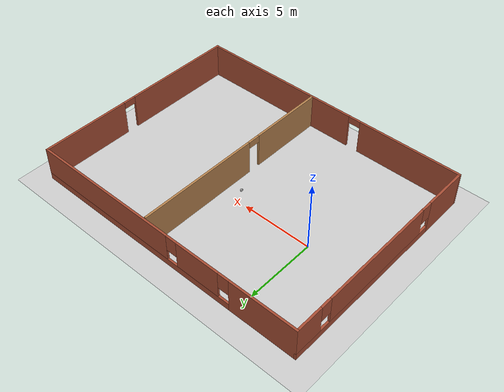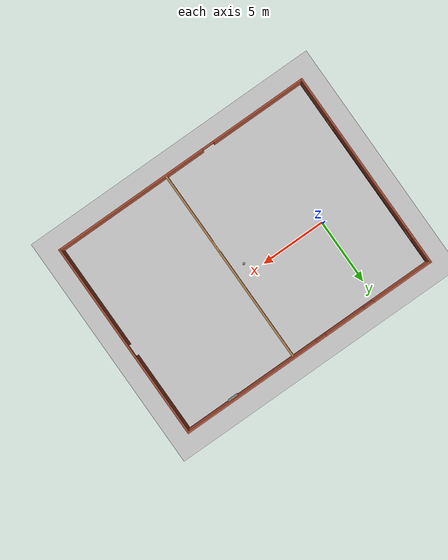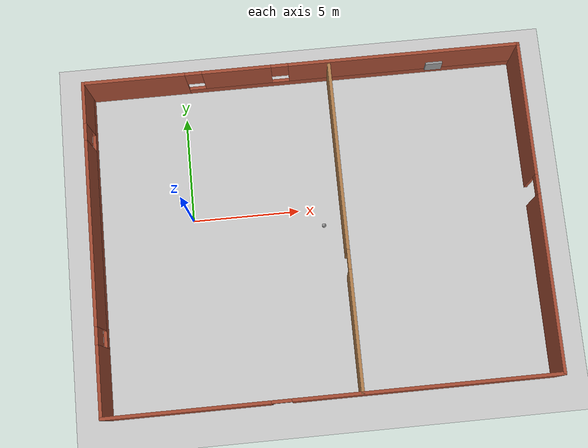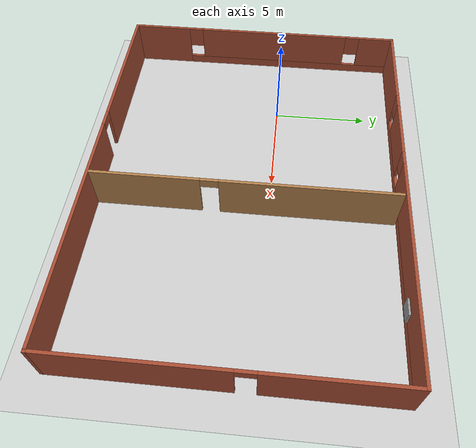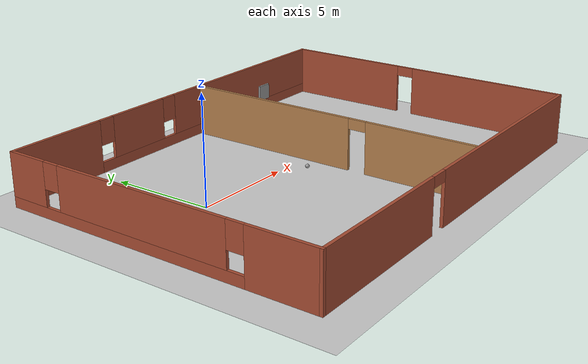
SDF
<sdf version="1.6">
 <world name="default">
  <light name="sun" type="directional">
   <pose>0 0 10 0 -0 0</pose>
   <diffuse>0.8 0.8 0.8 1</diffuse>
   <specular>0.2 0.2 0.2 1</specular>
   <attenuation>
    <range>1000</range>
    <constant>0.9</constant>
    <linear>0.01</linear>
    <quadratic>0.001</quadratic>
   </attenuation>
   <direction>-0.5 0.1 -0.9</direction>
  </light>
  <model name="ground_plane">
   <static>1</static>
   <link name="link">
    <collision name="collision">
     <geometry><plane><normal>0 0 1</normal><size>100 100</size></plane></geometry>
     <surface>
      <contact><collide_bitmask>65535</collide_bitmask></contact>
      <friction><ode><mu>100</mu><mu2>50</mu2></ode></friction>
     </surface>
    </collision>
    <visual name="visual">
     <cast_shadows>0</cast_shadows>
     <geometry><plane><normal>0 0 1</normal><size>100 100</size></plane></geometry>
     <material>
      <script><uri>file://media/materials/scripts/gazebo.material</uri><name>Gazebo/Grey</name></script>
     </material>
    </visual>
   </link>
  </model>
  <gravity>0 0 -9.8</gravity>
  <magnetic_field>6e-06 2.3e-05 -4.2e-05</magnetic_field>
  <atmosphere type="adiabatic"/>
  <physics name="default_physics" default="0" type="ode">
   <max_step_size>0.001</max_step_size>
   <real_time_factor>1</real_time_factor>
   <real_time_update_rate>1000</real_time_update_rate>
  </physics>
  <scene><ambient>0.4 0.4 0.4 1</ambient><background>0.7 0.7 0.7 1</background><shadows>1</shadows></scene>
  <spherical_coordinates>
   <surface_model>EARTH_WGS84</surface_model>
   <latitude_deg>0</latitude_deg>
   <longitude_deg>0</longitude_deg>
   <elevation>0</elevation>
   <heading_deg>0</heading_deg>
  </spherical_coordinates>
  <model name="newWorld">
   <pose>5.74394 -1.2166 0 0 -0 0</pose>
   <link name="Wall_0">
    <pose>-10.175 0 0 0 -0 1.5708</pose>
    <visual name="Wall_0_Visual_0">
     <pose>-6.10209 0 1.25 0 -0 0</pose>
     <geometry><box><size>3.29583 0.15 2.5</size></box></geometry>
     <material>
      <script><uri>file://media/materials/scripts/gazebo.material</uri><name>Gazebo/Bricks</name></script>
      <ambient>1 1 1 1</ambient>
     </material>
     <meta><layer>0</layer></meta>
    </visual>
    <collision name="Wall_0_Collision_0">
     <geometry><box><size>3.29583 0.15 2.5</size></box></geometry>
     <pose>-6.10209 0 1.25 0 -0 0</pose>
    </collision>
    <visual name="Wall_0_Visual_1">
     <pose>1.64791 0 0.25 0 -0 0</pose>
     <geometry><box><size>12.2042 0.15 0.5</size></box></geometry>
     <material>
      <script><uri>file://media/materials/scripts/gazebo.material</uri><name>Gazebo/Bricks</name></script>
      <ambient>1 1 1 1</ambient>
     </material>
     <meta><layer>0</layer></meta>
    </visual>
    <collision name="Wall_0_Collision_1">
     <geometry><box><size>12.2042 0.15 0.5</size></box></geometry>
     <pose>1.64791 0 0.25 0 -0 0</pose>
    </collision>
    <visual name="Wall_0_Visual_2">
     <pose>0.645198 0 1.5 0 -0 0</pose>
     <geometry><box><size>8.59874 0.15 2</size></box></geometry>
     <material>
      <script><uri>file://media/materials/scripts/gazebo.material</uri><name>Gazebo/Bricks</name></script>
      <ambient>1 1 1 1</ambient>
     </material>
     <meta><layer>0</layer></meta>
    </visual>
    <collision name="Wall_0_Collision_2">
     <geometry><box><size>8.59874 0.15 2</size></box></geometry>
     <pose>0.645198 0 1.5 0 -0 0</pose>
    </collision>
    <visual name="Wall_0_Visual_3">
     <pose>6.74728 0 1.5 0 -0 0</pose>
     <geometry><box><size>2.00543 0.15 2</size></box></geometry>
     <material>
      <script><uri>file://media/materials/scripts/gazebo.material</uri><name>Gazebo/Bricks</name></script>
      <ambient>1 1 1 1</ambient>
     </material>
     <meta><layer>0</layer></meta>
    </visual>
    <collision name="Wall_0_Collision_3">
     <geometry><box><size>2.00543 0.15 2</size></box></geometry>
     <pose>6.74728 0 1.5 0 -0 0</pose>
    </collision>
    <visual name="Wall_0_Visual_4">
     <pose>-4.05417 0 1.9 0 -0 0</pose>
     <geometry><box><size>0.8 0.15 1.2</size></box></geometry>
     <material>
      <script><uri>file://media/materials/scripts/gazebo.material</uri><name>Gazebo/Bricks</name></script>
      <ambient>1 1 1 1</ambient>
     </material>
     <meta><layer>0</layer></meta>
    </visual>
    <collision name="Wall_0_Collision_4">
     <geometry><box><size>0.8 0.15 1.2</size></box></geometry>
     <pose>-4.05417 0 1.9 0 -0 0</pose>
    </collision>
    <visual name="Wall_0_Visual_5">
     <pose>5.34457 0 1.9 0 -0 0</pose>
     <geometry><box><size>0.8 0.15 1.2</size></box></geometry>
     <material>
      <script><uri>file://media/materials/scripts/gazebo.material</uri><name>Gazebo/Bricks</name></script>
      <ambient>1 1 1 1</ambient>
     </material>
     <meta><layer>0</layer></meta>
    </visual>
    <collision name="Wall_0_Collision_5">
     <geometry><box><size>0.8 0.15 1.2</size></box></geometry>
     <pose>5.34457 0 1.9 0 -0 0</pose>
    </collision>
   </link>
   <link name="Wall_1">
    <pose>-1e-06 7.675 0 0 -0 0</pose>
    <visual name="Wall_1_Visual_0">
     <pose>-7.84489 0 1.25 0 -0 0</pose>
     <geometry><box><size>4.81023 0.15 2.5</size></box></geometry>
     <material>
      <script><uri>file://media/materials/scripts/gazebo.material</uri><name>Gazebo/Bricks</name></script>
      <ambient>1 1 1 1</ambient>
     </material>
     <meta><layer>0</layer></meta>
    </visual>
    <collision name="Wall_1_Collision_0">
     <geometry><box><size>4.81023 0.15 2.5</size></box></geometry>
     <pose>-7.84489 0 1.25 0 -0 0</pose>
    </collision>
    <visual name="Wall_1_Visual_1">
     <pose>2.40511 0 0.25 0 -0 0</pose>
     <geometry><box><size>15.6898 0.15 0.5</size></box></geometry>
     <material>
      <script><uri>file://media/materials/scripts/gazebo.material</uri><name>Gazebo/Bricks</name></script>
      <ambient>1 1 1 1</ambient>
     </material>
     <meta><layer>0</layer></meta>
    </visual>
    <collision name="Wall_1_Collision_1">
     <geometry><box><size>15.6898 0.15 0.5</size></box></geometry>
     <pose>2.40511 0 0.25 0 -0 0</pose>
    </collision>
    <visual name="Wall_1_Visual_2">
     <pose>-3.02777 0 1.5 0 -0 0</pose>
     <geometry><box><size>3.224 0.15 2</size></box></geometry>
     <material>
      <script><uri>file://media/materials/scripts/gazebo.material</uri><name>Gazebo/Bricks</name></script>
      <ambient>1 1 1 1</ambient>
     </material>
     <meta><layer>0</layer></meta>
    </visual>
    <collision name="Wall_1_Collision_2">
     <geometry><box><size>3.224 0.15 2</size></box></geometry>
     <pose>-3.02777 0 1.5 0 -0 0</pose>
    </collision>
    <visual name="Wall_1_Visual_3">
     <pose>4.81711 0 1.5 0 -0 0</pose>
     <geometry><box><size>10.8658 0.15 2</size></box></geometry>
     <material>
      <script><uri>file://media/materials/scripts/gazebo.material</uri><name>Gazebo/Bricks</name></script>
      <ambient>1 1 1 1</ambient>
     </material>
     <meta><layer>0</layer></meta>
    </visual>
    <collision name="Wall_1_Collision_3">
     <geometry><box><size>10.8658 0.15 2</size></box></geometry>
     <pose>4.81711 0 1.5 0 -0 0</pose>
    </collision>
    <visual name="Wall_1_Visual_4">
     <pose>-5.03977 0 1.9 0 -0 0</pose>
     <geometry><box><size>0.8 0.15 1.2</size></box></geometry>
     <material>
      <script><uri>file://media/materials/scripts/gazebo.material</uri><name>Gazebo/Bricks</name></script>
      <ambient>1 1 1 1</ambient>
     </material>
     <meta><layer>0</layer></meta>
    </visual>
    <collision name="Wall_1_Collision_4">
     <geometry><box><size>0.8 0.15 1.2</size></box></geometry>
     <pose>-5.03977 0 1.9 0 -0 0</pose>
    </collision>
    <visual name="Wall_1_Visual_5">
     <pose>-1.01578 0 1.9 0 -0 0</pose>
     <geometry><box><size>0.8 0.15 1.2</size></box></geometry>
     <material>
      <script><uri>file://media/materials/scripts/gazebo.material</uri><name>Gazebo/Bricks</name></script>
      <ambient>1 1 1 1</ambient>
     </material>
     <meta><layer>0</layer></meta>
    </visual>
    <collision name="Wall_1_Collision_5">
     <geometry><box><size>0.8 0.15 1.2</size></box></geometry>
     <pose>-1.01578 0 1.9 0 -0 0</pose>
    </collision>
   </link>
   <link name="Wall_2">
    <pose>10.175 0 0 0 0 -1.5708</pose>
    <visual name="Wall_2_Visual_0">
     <pose>-4.54675 0 1.25 0 -0 0</pose>
     <geometry><box><size>6.4065 0.15 2.5</size></box></geometry>
     <material>
      <script><uri>file://media/materials/scripts/gazebo.material</uri><name>Gazebo/Bricks</name></script>
      <ambient>1 1 1 1</ambient>
     </material>
     <meta><layer>0</layer></meta>
    </visual>
    <collision name="Wall_2_Collision_0">
     <geometry><box><size>6.4065 0.15 2.5</size></box></geometry>
     <pose>-4.54675 0 1.25 0 -0 0</pose>
    </collision>
    <visual name="Wall_2_Visual_1">
     <pose>3.65325 0 1.25 0 -0 0</pose>
     <geometry><box><size>8.1935 0.15 2.5</size></box></geometry>
     <material>
      <script><uri>file://media/materials/scripts/gazebo.material</uri><name>Gazebo/Bricks</name></script>
      <ambient>1 1 1 1</ambient>
     </material>
     <meta><layer>0</layer></meta>
    </visual>
    <collision name="Wall_2_Collision_1">
     <geometry><box><size>8.1935 0.15 2.5</size></box></geometry>
     <pose>3.65325 0 1.25 0 -0 0</pose>
    </collision>
    <visual name="Wall_2_Visual_2">
     <pose>-0.893504 0 2.25 0 -0 0</pose>
     <geometry><box><size>0.9 0.15 0.5</size></box></geometry>
     <material>
      <script><uri>file://media/materials/scripts/gazebo.material</uri><name>Gazebo/Bricks</name></script>
      <ambient>1 1 1 1</ambient>
     </material>
     <meta><layer>0</layer></meta>
    </visual>
    <collision name="Wall_2_Collision_2">
     <geometry><box><size>0.9 0.15 0.5</size></box></geometry>
     <pose>-0.893504 0 2.25 0 -0 0</pose>
    </collision>
   </link>
   <link name="Wall_3">
    <pose>-1e-06 -7.675 0 0 -0 3.14159</pose>
    <visual name="Wall_3_Visual_0">
     <pose>-4.2031 0 1.25 0 -0 0</pose>
     <geometry><box><size>12.0938 0.15 2.5</size></box></geometry>
     <material>
      <script><uri>file://media/materials/scripts/gazebo.material</uri><name>Gazebo/Bricks</name></script>
      <ambient>1 1 1 1</ambient>
     </material>
     <meta><layer>0</layer></meta>
    </visual>
    <collision name="Wall_3_Collision_0">
     <geometry><box><size>12.0938 0.15 2.5</size></box></geometry>
     <pose>-4.2031 0 1.25 0 -0 0</pose>
    </collision>
    <visual name="Wall_3_Visual_1">
     <pose>6.4969 0 1.25 0 -0 0</pose>
     <geometry><box><size>7.5062 0.15 2.5</size></box></geometry>
     <material>
      <script><uri>file://media/materials/scripts/gazebo.material</uri><name>Gazebo/Bricks</name></script>
      <ambient>1 1 1 1</ambient>
     </material>
     <meta><layer>0</layer></meta>
    </visual>
    <collision name="Wall_3_Collision_1">
     <geometry><box><size>7.5062 0.15 2.5</size></box></geometry>
     <pose>6.4969 0 1.25 0 -0 0</pose>
    </collision>
    <visual name="Wall_3_Visual_2">
     <pose>2.2938 0 2.25 0 -0 0</pose>
     <geometry><box><size>0.9 0.15 0.5</size></box></geometry>
     <material>
      <script><uri>file://media/materials/scripts/gazebo.material</uri><name>Gazebo/Bricks</name></script>
      <ambient>1 1 1 1</ambient>
     </material>
     <meta><layer>0</layer></meta>
    </visual>
    <collision name="Wall_3_Collision_2">
     <geometry><box><size>0.9 0.15 0.5</size></box></geometry>
     <pose>2.2938 0 2.25 0 -0 0</pose>
    </collision>
   </link>
   <link name="Wall_5">
    <pose>1.27995 -0.068162 0 0 -0 1.5708</pose>
    <visual name="Wall_5_Visual_0">
     <pose>-4.86589 0 1.25 0 -0 0</pose>
     <geometry><box><size>5.51822 0.15 2.5</size></box></geometry>
     <material>
      <script><uri>file://media/materials/scripts/gazebo.material</uri><name>Gazebo/Wood</name></script>
      <ambient>0.996078 0.47451 0.0196078 1</ambient>
     </material>
     <meta><layer>0</layer></meta>
    </visual>
    <collision name="Wall_5_Collision_0">
     <geometry><box><size>5.51822 0.15 2.5</size></box></geometry>
     <pose>-4.86589 0 1.25 0 -0 0</pose>
    </collision>
    <visual name="Wall_5_Visual_1">
     <pose>3.20911 0 1.25 0 -0 0</pose>
     <geometry><box><size>8.83178 0.15 2.5</size></box></geometry>
     <material>
      <script><uri>file://media/materials/scripts/gazebo.material</uri><name>Gazebo/Wood</name></script>
      <ambient>0.996078 0.47451 0.0196078 1</ambient>
     </material>
     <meta><layer>0</layer></meta>
    </visual>
    <collision name="Wall_5_Collision_1">
     <geometry><box><size>8.83178 0.15 2.5</size></box></geometry>
     <pose>3.20911 0 1.25 0 -0 0</pose>
    </collision>
    <visual name="Wall_5_Visual_2">
     <pose>-1.65678 0 2.25 0 -0 0</pose>
     <geometry><box><size>0.9 0.15 0.5</size></box></geometry>
     <material>
      <script><uri>file://media/materials/scripts/gazebo.material</uri><name>Gazebo/Wood</name></script>
      <ambient>0.996078 0.47451 0.0196078 1</ambient>
     </material>
     <meta><layer>0</layer></meta>
    </visual>
    <collision name="Wall_5_Collision_2">
     <geometry><box><size>0.9 0.15 0.5</size></box></geometry>
     <pose>-1.65678 0 2.25 0 -0 0</pose>
    </collision>
   </link>
   <link name="Window_4">
    <collision name="Window_4_Collision">
     <geometry><box><size>0.8 0.17 0.8</size></box></geometry>
     <pose>0 0 0.4 0 -0 0</pose>
    </collision>
    <visual name="Window_4_Visual">
     <pose>0 0 0.4 0 -0 0</pose>
     <geometry><box><size>0.8 0.17 0.8</size></box></geometry>
     <material>
      <script><uri>file://media/materials/scripts/gazebo.material</uri><name>Gazebo/Grey</name></script>
     </material>
    </visual>
    <pose>6.36156 7.58549 0.5 0 -0 0</pose>
   </link>
   <static>1</static>
  </model>
  <model name="ball">
   <link name="link_0">
    <inertial>
     <mass>1</mass>
     <inertia><ixx>0.1</ixx><ixy>0</ixy><ixz>0</ixz><iyy>0.1</iyy><iyz>0</iyz><izz>0.1</izz></inertia>
    </inertial>
    <visual name="visual">
     <geometry><sphere><radius>0.1</radius></sphere></geometry>
     <material>
      <lighting>1</lighting>
      <script><uri>file://media/materials/scripts/gazebo.material</uri><name>Gazebo/Grey</name></script>
      <shader type="pixel"><normal_map>__default__</normal_map></shader>
      <ambient>1 1 1 1</ambient>
      <diffuse>1 1 1 1</diffuse>
      <specular>1 1 1 1</specular>
      <emissive>1 1 1 1</emissive>
     </material>
    </visual>
    <collision name="collision">
     <geometry><sphere><radius>0.1</radius></sphere></geometry>
     <surface>
      <friction>
       <ode><mu>1</mu><mu2>1</mu2><fdir1>0 0 0</fdir1><slip1>0</slip1><slip2>0</slip2></ode>
       <torsional>
        <coefficient>1</coefficient>
        <patch_radius>0</patch_radius>
        <surface_radius>0</surface_radius>
        <use_patch_radius>1</use_patch_radius>
        <ode><slip>0</slip></ode>
       </torsional>
      </friction>
      <bounce><restitution_coefficient>0</restitution_coefficient><threshold>1e+06</threshold></bounce>
      <contact>
       <collide_without_contact>0</collide_without_contact>
       <collide_without_contact_bitmask>1</collide_without_contact_bitmask>
       <collide_bitmask>1</collide_bitmask>
       <ode>
        <soft_cfm>0</soft_cfm>
        <soft_erp>0.2</soft_erp>
        <kp>1e+13</kp>
        <kd>1</kd>
        <max_vel>0.01</max_vel>
        <min_depth>0</min_depth>
       </ode>
       <bullet>
        <split_impulse>1</split_impulse>
        <split_impulse_penetration_threshold>-0.01</split_impulse_penetration_threshold>
        <soft_cfm>0</soft_cfm>
        <soft_erp>0.2</soft_erp>
        <kp>1e+13</kp>
        <kd>1</kd>
       </bullet>
      </contact>
     </surface>
    </collision>
   </link>
   <static>0</static>
   <pose>6.12314 -0.822842 0.1 0 -0 0</pose>
  </model>
 </world>
</sdf>
